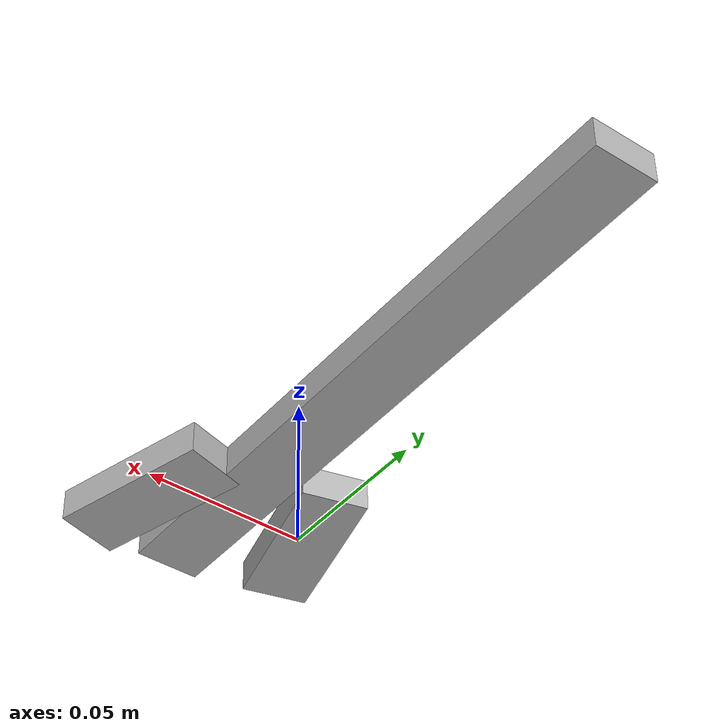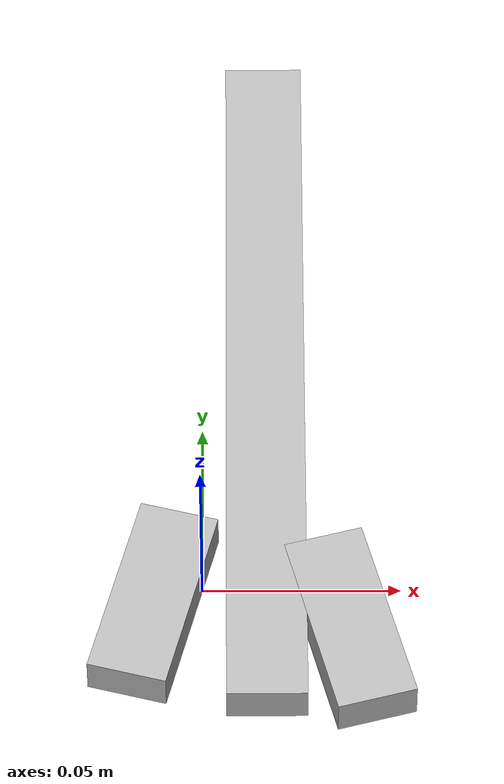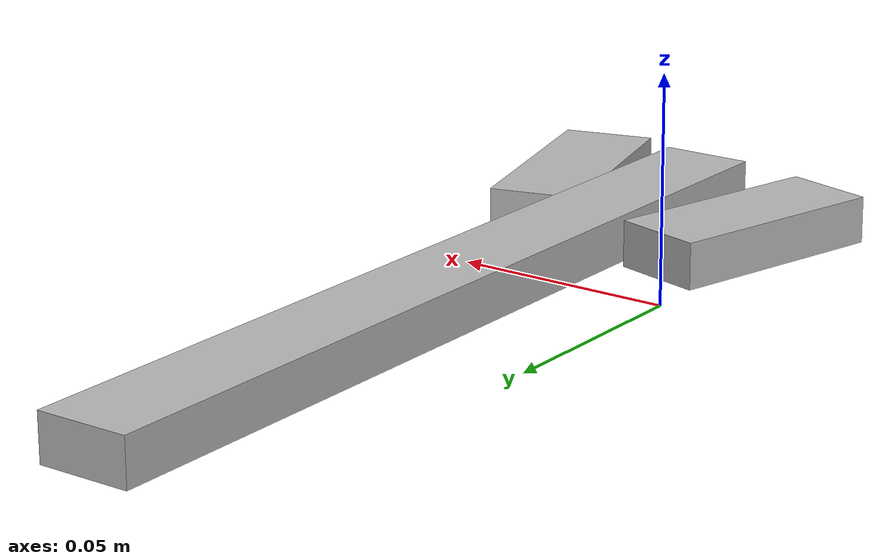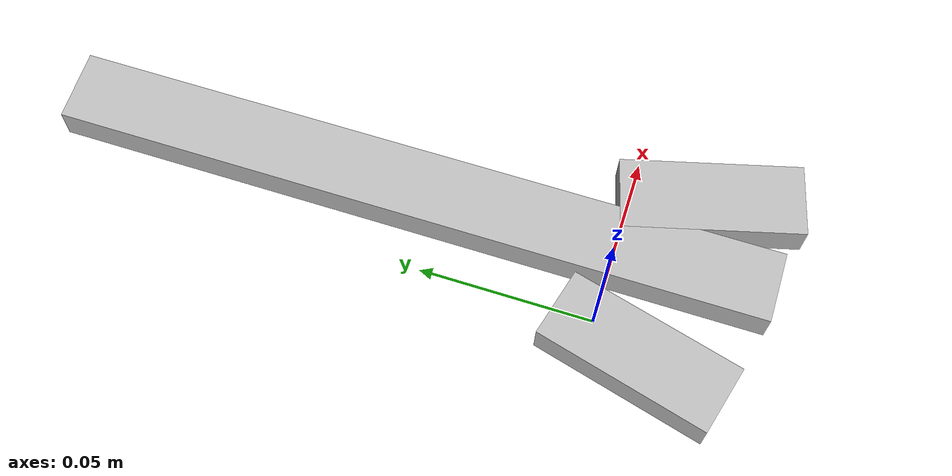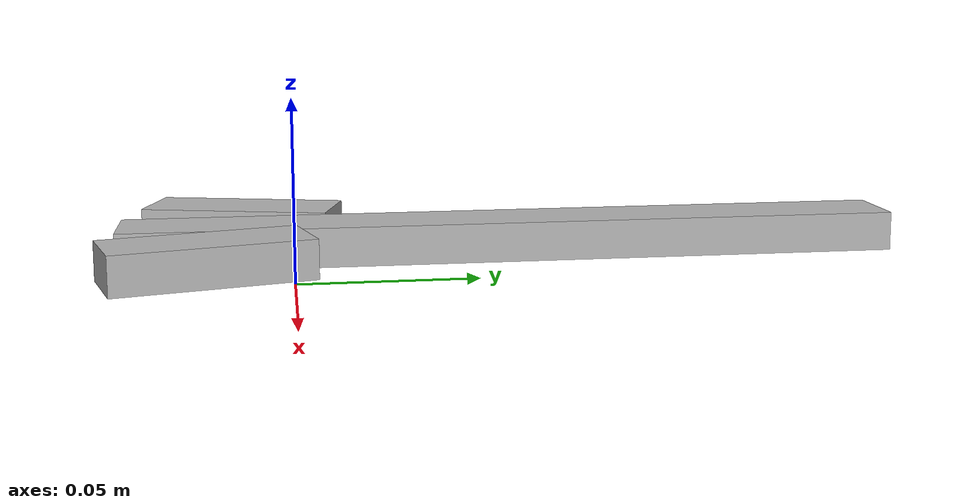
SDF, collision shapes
<?xml version="1.0"?>
<sdf version="1.6">
    <model name="scissors">
        <pose>0 0 0.01 0 0 0</pose>
        <link name="link_00">
            <pose>0.0 0 0 0 0 0.26</pose>
            <visual name="visual_00">
                <geometry>
                    <mesh>
                        <uri>model://scissors/textured.dae</uri>
                    </mesh>
                </geometry>
            </visual>
            <collision name="filos">
                <pose> 0.03 0.05 0.005 0 0 -0.26</pose>
                <geometry>
                    <box>
                        <size>0.02 0.20 0.01</size>
                    </box>
                </geometry>
            </collision>
            <collision name="ojo_izq">
                <pose> 0.03 -0.03 0.005 0 0 0</pose>
                <geometry>
                    <box>
                        <size>0.02 0.05 0.01</size>
                    </box>
                </geometry>
            </collision>
            <collision name="ojo_der">
                <pose> -0.015 -0.01 0.005 0 0 -0.52</pose>
                <geometry>
                    <box>
                        <size>0.02 0.05 0.01</size>
                    </box>
                </geometry>
            </collision>
            <inertial>
                <pose> 0.015 0.003 0.007 0 0 -0.26</pose>
                <inertia>
                    <ixx>0.9998e-02</ixx>
                    <ixy>-0.0</ixy>
                    <ixz>-0.0</ixz>
                    <iyy>0.9998e-02</iyy>
                    <iyz>0.0</iyz>
                    <izz>0.9998e-02</izz>
                </inertia>
            </inertial>
        </link>
    </model>
</sdf>
